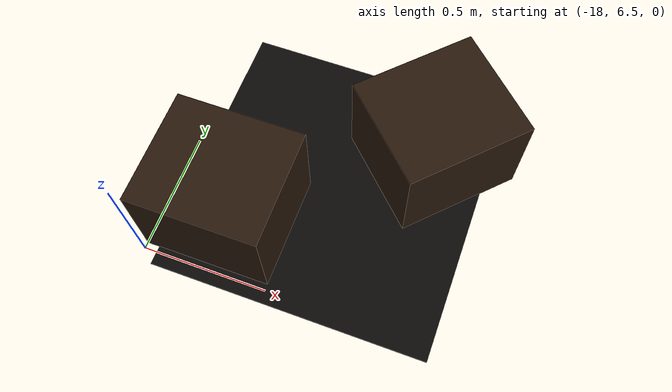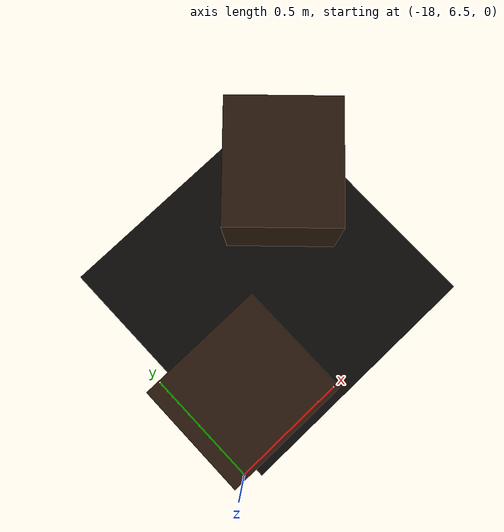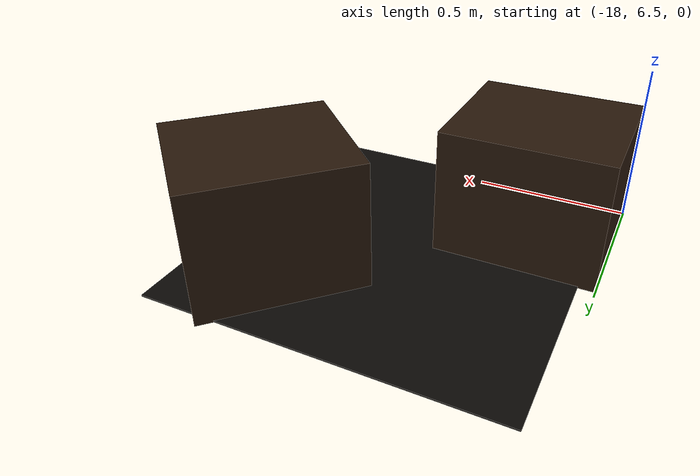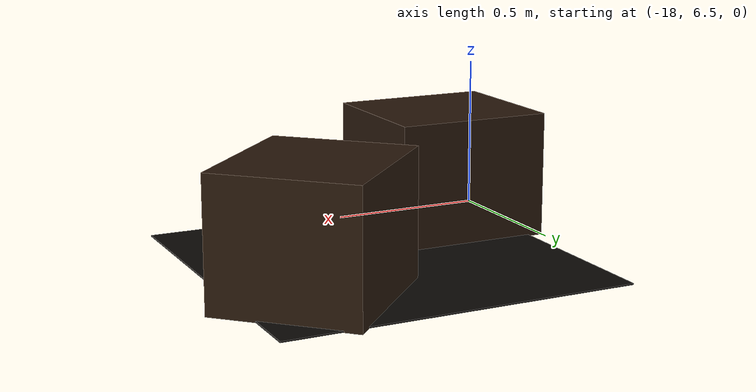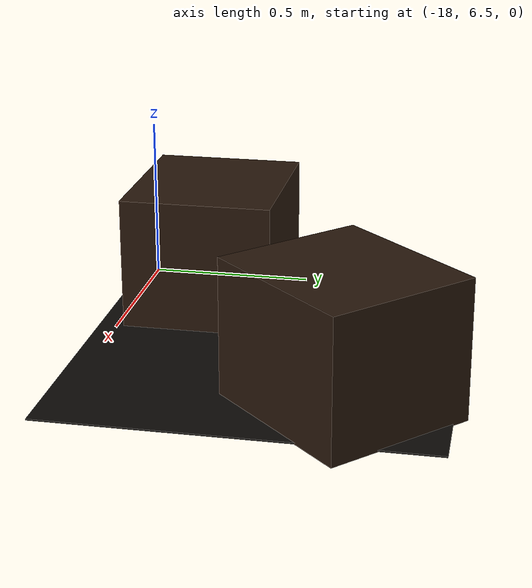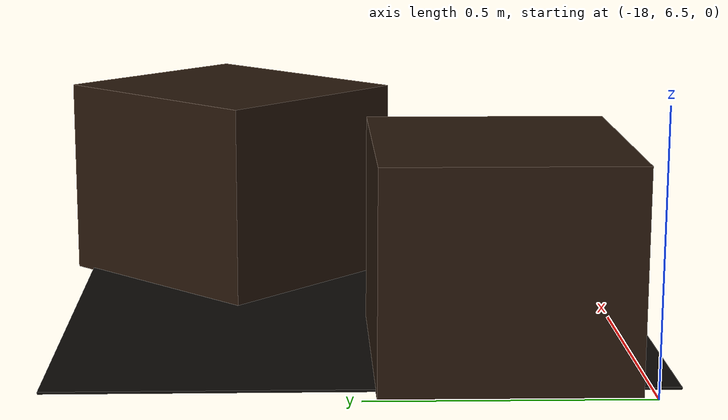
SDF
<sdf version="1.9"><model name="fire_02">
      <static>true</static>
      <pose>-17.4 7 0 0 0 0</pose>
      <link name="body">
        <visual name="scorch_visual">
          <pose>0 0 0.003 0 0 0</pose>
          <geometry>
            <box>
              <size>1.1 1.1 0.004</size>
            </box>
          </geometry>
          <material>
            <ambient>.045 .035 .025 1</ambient>
            <diffuse>.045 .035 .025 1</diffuse>
          </material>
        </visual>
        <visual name="charred_crate0_visual">
          <pose>-0.35 -0.25 0.2 0 0 0</pose>
          <geometry>
            <box>
              <size>0.5 0.45 0.4</size>
            </box>
          </geometry>
          <material>
            <ambient>.16 .095 .045 1</ambient>
            <diffuse>.16 .095 .045 1</diffuse>
          </material>
        </visual>
        <collision name="charred_crate0_collision">
          <pose>-0.35 -0.25 0.2 0 0 0</pose>
          <geometry>
            <box>
              <size>0.5 0.45 0.4</size>
            </box>
          </geometry>
        </collision>
        <visual name="charred_crate1_visual">
          <pose>0.32 0.25 0.2 0 0 0.8</pose>
          <geometry>
            <box>
              <size>0.5 0.45 0.4</size>
            </box>
          </geometry>
          <material>
            <ambient>.16 .095 .045 1</ambient>
            <diffuse>.16 .095 .045 1</diffuse>
          </material>
        </visual>
        <collision name="charred_crate1_collision">
          <pose>0.32 0.25 0.2 0 0 0.8</pose>
          <geometry>
            <box>
              <size>0.5 0.45 0.4</size>
            </box>
          </geometry>
        </collision>
        </link>
    <plugin filename="gz-sim-pose-publisher-system" name="gz::sim::systems::PosePublisher"><publish_link_pose>false</publish_link_pose><publish_visual_pose>false</publish_visual_pose><publish_collision_pose>false</publish_collision_pose><publish_sensor_pose>false</publish_sensor_pose><publish_model_pose>true</publish_model_pose><publish_nested_model_pose>true</publish_nested_model_pose><static_publisher>false</static_publisher><use_pose_vector_msg>true</use_pose_vector_msg><update_frequency>10</update_frequency><topic>/model/fire_02/pose</topic></plugin></model>
    </sdf>
